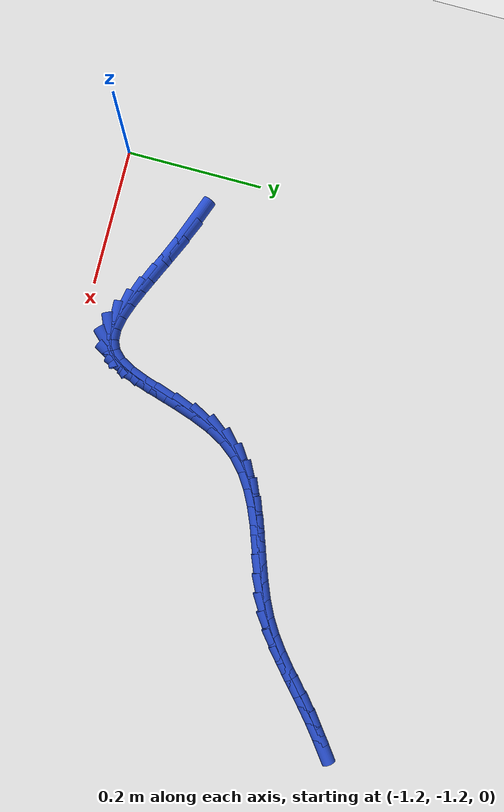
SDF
<sdf version="1.6">
 <world name="default">
  <model name="ground_plane">
   <static>1</static>
   <link name="link">
    <collision name="collision">
     <geometry><plane><normal>0 0 1</normal><size>100 100</size></plane></geometry>
     <surface><friction><ode><mu>100</mu><mu2>50</mu2></ode></friction></surface>
    </collision>
    <visual name="visual">
     <cast_shadows>0</cast_shadows>
     <geometry><plane><normal>0 0 1</normal><size>100 100</size></plane></geometry>
     <material>
      <script><uri>file://media/materials/scripts/gazebo.material</uri><name>Gazebo/WhiteGlow</name></script>
     </material>
    </visual>
   </link>
  </model>
  <model name="line">
   <link name="link_212">
    <pose>-1.1208861672989143 -1.081029491116497 0.01 0 1.57 -0.3668661049684762</pose>
    <collision name="collision">
     <geometry><cylinder><radius>0.01</radius><length>0.08</length></cylinder></geometry>
    </collision>
    <visual name="visual">
     <material>
      <script><name>Gazebo/Blue</name><uri>file://media/materials/scripts/gazebo.material</uri></script>
     </material>
     <geometry><cylinder><radius>0.01</radius><length>0.08</length></cylinder></geometry>
    </visual>
   </link>
   <link name="link_213">
    <pose>-1.0900648138218478 -1.0928729714566867 0.01 0 1.57 -0.4141172811851447</pose>
    <collision name="collision">
     <geometry><cylinder><radius>0.01</radius><length>0.08</length></cylinder></geometry>
    </collision>
    <visual name="visual">
     <material>
      <script><name>Gazebo/Blue</name><uri>file://media/materials/scripts/gazebo.material</uri></script>
     </material>
     <geometry><cylinder><radius>0.01</radius><length>0.08</length></cylinder></geometry>
    </visual>
   </link>
   <link name="link_214">
    <pose>-1.06080799821197 -1.1057323676902944 0.01 0 1.57 -0.4387109731926885</pose>
    <collision name="collision">
     <geometry><cylinder><radius>0.01</radius><length>0.08</length></cylinder></geometry>
    </collision>
    <visual name="visual">
     <material>
      <script><name>Gazebo/Blue</name><uri>file://media/materials/scripts/gazebo.material</uri></script>
     </material>
     <geometry><cylinder><radius>0.01</radius><length>0.08</length></cylinder></geometry>
    </visual>
   </link>
   <link name="link_215">
    <pose>-1.0332342277439517 -1.118670167249811 0.01 0 1.57 -0.4382717610105717</pose>
    <collision name="collision">
     <geometry><cylinder><radius>0.01</radius><length>0.08</length></cylinder></geometry>
    </collision>
    <visual name="visual">
     <material>
      <script><name>Gazebo/Blue</name><uri>file://media/materials/scripts/gazebo.material</uri></script>
     </material>
     <geometry><cylinder><radius>0.01</radius><length>0.08</length></cylinder></geometry>
    </visual>
   </link>
   <link name="link_216">
    <pose>-1.007462009692463 -1.1307488575677267 0.01 0 1.57 -0.4070049306247056</pose>
    <collision name="collision">
     <geometry><cylinder><radius>0.01</radius><length>0.08</length></cylinder></geometry>
    </collision>
    <visual name="visual">
     <material>
      <script><name>Gazebo/Blue</name><uri>file://media/materials/scripts/gazebo.material</uri></script>
     </material>
     <geometry><cylinder><radius>0.01</radius><length>0.08</length></cylinder></geometry>
    </visual>
   </link>
   <link name="link_217">
    <pose>-0.9836098513321746 -1.1410309260765328 0.01 0 1.57 -0.33312457676220664</pose>
    <collision name="collision">
     <geometry><cylinder><radius>0.01</radius><length>0.08</length></cylinder></geometry>
    </collision>
    <visual name="visual">
     <material>
      <script><name>Gazebo/Blue</name><uri>file://media/materials/scripts/gazebo.material</uri></script>
     </material>
     <geometry><cylinder><radius>0.01</radius><length>0.08</length></cylinder></geometry>
    </visual>
   </link>
   <link name="link_218">
    <pose>-0.9617962599377582 -1.1485788602087186 0.01 0 1.57 -0.19470288577468708</pose>
    <collision name="collision">
     <geometry><cylinder><radius>0.01</radius><length>0.08</length></cylinder></geometry>
    </collision>
    <visual name="visual">
     <material>
      <script><name>Gazebo/Blue</name><uri>file://media/materials/scripts/gazebo.material</uri></script>
     </material>
     <geometry><cylinder><radius>0.01</radius><length>0.08</length></cylinder></geometry>
    </visual>
   </link>
   <link name="link_219">
    <pose>-0.942139742783884 -1.1524551473967757 0.01 0 1.57 0.04214033547796415</pose>
    <collision name="collision">
     <geometry><cylinder><radius>0.01</radius><length>0.08</length></cylinder></geometry>
    </collision>
    <visual name="visual">
     <material>
      <script><name>Gazebo/Blue</name><uri>file://media/materials/scripts/gazebo.material</uri></script>
     </material>
     <geometry><cylinder><radius>0.01</radius><length>0.08</length></cylinder></geometry>
    </visual>
   </link>
   <link name="link_220">
    <pose>-0.924758807145222 -1.151722275073194 0.01 0 1.57 0.39678079146949946</pose>
    <collision name="collision">
     <geometry><cylinder><radius>0.01</radius><length>0.08</length></cylinder></geometry>
    </collision>
    <visual name="visual">
     <material>
      <script><name>Gazebo/Blue</name><uri>file://media/materials/scripts/gazebo.material</uri></script>
     </material>
     <geometry><cylinder><radius>0.01</radius><length>0.08</length></cylinder></geometry>
    </visual>
   </link>
   <link name="link_221">
    <pose>-0.9097719602964435 -1.1454427306704646 0.01 0 1.57 0.7921762380088513</pose>
    <collision name="collision">
     <geometry><cylinder><radius>0.01</radius><length>0.08</length></cylinder></geometry>
    </collision>
    <visual name="visual">
     <material>
      <script><name>Gazebo/Blue</name><uri>file://media/materials/scripts/gazebo.material</uri></script>
     </material>
     <geometry><cylinder><radius>0.01</radius><length>0.08</length></cylinder></geometry>
    </visual>
   </link>
   <link name="link_222">
    <pose>-0.8972657617313341 -1.1327658366105413 0.01 0 1.57 1.0616512906672662</pose>
    <collision name="collision">
     <geometry><cylinder><radius>0.01</radius><length>0.08</length></cylinder></geometry>
    </collision>
    <visual name="visual">
     <material>
      <script><name>Gazebo/Blue</name><uri>file://media/materials/scripts/gazebo.material</uri></script>
     </material>
     <geometry><cylinder><radius>0.01</radius><length>0.08</length></cylinder></geometry>
    </visual>
   </link>
   <link name="link_223">
    <pose>-0.8868564926729448 -1.1141191452128152 0.01 0 1.57 1.1989379848951742</pose>
    <collision name="collision">
     <geometry><cylinder><radius>0.01</radius><length>0.08</length></cylinder></geometry>
    </collision>
    <visual name="visual">
     <material>
      <script><name>Gazebo/Blue</name><uri>file://media/materials/scripts/gazebo.material</uri></script>
     </material>
     <geometry><cylinder><radius>0.01</radius><length>0.08</length></cylinder></geometry>
    </visual>
   </link>
   <link name="link_224">
    <pose>-0.8778023390294762 -1.0909035221859238 0.01 0 1.57 1.260581516897273</pose>
    <collision name="collision">
     <geometry><cylinder><radius>0.01</radius><length>0.08</length></cylinder></geometry>
    </collision>
    <visual name="visual">
     <material>
      <script><name>Gazebo/Blue</name><uri>file://media/materials/scripts/gazebo.material</uri></script>
     </material>
     <geometry><cylinder><radius>0.01</radius><length>0.08</length></cylinder></geometry>
    </visual>
   </link>
   <link name="link_225">
    <pose>-0.8693524991860286 -1.0645442615853866 0.01 0 1.57 1.2736949032423823</pose>
    <collision name="collision">
     <geometry><cylinder><radius>0.01</radius><length>0.08</length></cylinder></geometry>
    </collision>
    <visual name="visual">
     <material>
      <script><name>Gazebo/Blue</name><uri>file://media/materials/scripts/gazebo.material</uri></script>
     </material>
     <geometry><cylinder><radius>0.01</radius><length>0.08</length></cylinder></geometry>
    </visual>
   </link>
   <link name="link_226">
    <pose>-0.8607561715277018 -1.0364666574667243 0.01 0 1.57 1.247880961234506</pose>
    <collision name="collision">
     <geometry><cylinder><radius>0.01</radius><length>0.08</length></cylinder></geometry>
    </collision>
    <visual name="visual">
     <material>
      <script><name>Gazebo/Blue</name><uri>file://media/materials/scripts/gazebo.material</uri></script>
     </material>
     <geometry><cylinder><radius>0.01</radius><length>0.08</length></cylinder></geometry>
    </visual>
   </link>
   <link name="link_227">
    <pose>-0.8512625544395966 -1.0080960038854585 0.01 0 1.57 1.1825177818254713</pose>
    <collision name="collision">
     <geometry><cylinder><radius>0.01</radius><length>0.08</length></cylinder></geometry>
    </collision>
    <visual name="visual">
     <material>
      <script><name>Gazebo/Blue</name><uri>file://media/materials/scripts/gazebo.material</uri></script>
     </material>
     <geometry><cylinder><radius>0.01</radius><length>0.08</length></cylinder></geometry>
    </visual>
   </link>
   <link name="link_228">
    <pose>-0.8401208463068134 -0.9808575948971097 0.01 0 1.57 1.0690075752272354</pose>
    <collision name="collision">
     <geometry><cylinder><radius>0.01</radius><length>0.08</length></cylinder></geometry>
    </collision>
    <visual name="visual">
     <material>
      <script><name>Gazebo/Blue</name><uri>file://media/materials/scripts/gazebo.material</uri></script>
     </material>
     <geometry><cylinder><radius>0.01</radius><length>0.08</length></cylinder></geometry>
    </visual>
   </link>
   <link name="link_229">
    <pose>-0.8265802455144524 -0.956176724557198 0.01 0 1.57 0.9017826069878376</pose>
    <collision name="collision">
     <geometry><cylinder><radius>0.01</radius><length>0.08</length></cylinder></geometry>
    </collision>
    <visual name="visual">
     <material>
      <script><name>Gazebo/Blue</name><uri>file://media/materials/scripts/gazebo.material</uri></script>
     </material>
     <geometry><cylinder><radius>0.01</radius><length>0.08</length></cylinder></geometry>
    </visual>
   </link>
   <link name="link_230">
    <pose>-0.8100306466969263 -0.9352450899686405 0.01 0 1.57 0.7304967157284487</pose>
    <collision name="collision">
     <geometry><cylinder><radius>0.01</radius><length>0.08</length></cylinder></geometry>
    </collision>
    <visual name="visual">
     <material>
      <script><name>Gazebo/Blue</name><uri>file://media/materials/scripts/gazebo.material</uri></script>
     </material>
     <geometry><cylinder><radius>0.01</radius><length>0.08</length></cylinder></geometry>
    </visual>
   </link>
   <link name="link_231">
    <pose>-0.7906743808808089 -0.9179055060408285 0.01 0 1.57 0.5861280367078591</pose>
    <collision name="collision">
     <geometry><cylinder><radius>0.01</radius><length>0.08</length></cylinder></geometry>
    </collision>
    <visual name="visual">
     <material>
      <script><name>Gazebo/Blue</name><uri>file://media/materials/scripts/gazebo.material</uri></script>
     </material>
     <geometry><cylinder><radius>0.01</radius><length>0.08</length></cylinder></geometry>
    </visual>
   </link>
   <link name="link_232">
    <pose>-0.7690047515074829 -0.9035176883132442 0.01 0 1.57 0.4749006647236652</pose>
    <collision name="collision">
     <geometry><cylinder><radius>0.01</radius><length>0.08</length></cylinder></geometry>
    </collision>
    <visual name="visual">
     <material>
      <script><name>Gazebo/Blue</name><uri>file://media/materials/scripts/gazebo.material</uri></script>
     </material>
     <geometry><cylinder><radius>0.01</radius><length>0.08</length></cylinder></geometry>
    </visual>
   </link>
   <link name="link_233">
    <pose>-0.7455154326626457 -0.89144073694733 0.01 0 1.57 0.3970984434244008</pose>
    <collision name="collision">
     <geometry><cylinder><radius>0.01</radius><length>0.08</length></cylinder></geometry>
    </collision>
    <visual name="visual">
     <material>
      <script><name>Gazebo/Blue</name><uri>file://media/materials/scripts/gazebo.material</uri></script>
     </material>
     <geometry><cylinder><radius>0.01</radius><length>0.08</length></cylinder></geometry>
    </visual>
   </link>
   <link name="link_234">
    <pose>-0.7207000984319929 -0.881033752104528 0.01 0 1.57 0.3505430093700048</pose>
    <collision name="collision">
     <geometry><cylinder><radius>0.01</radius><length>0.08</length></cylinder></geometry>
    </collision>
    <visual name="visual">
     <material>
      <script><name>Gazebo/Blue</name><uri>file://media/materials/scripts/gazebo.material</uri></script>
     </material>
     <geometry><cylinder><radius>0.01</radius><length>0.08</length></cylinder></geometry>
    </visual>
   </link>
   <link name="link_235">
    <pose>-0.6950524229012228 -0.8716558339462818 0.01 0 1.57 0.3330545580949228</pose>
    <collision name="collision">
     <geometry><cylinder><radius>0.01</radius><length>0.08</length></cylinder></geometry>
    </collision>
    <visual name="visual">
     <material>
      <script><name>Gazebo/Blue</name><uri>file://media/materials/scripts/gazebo.material</uri></script>
     </material>
     <geometry><cylinder><radius>0.01</radius><length>0.08</length></cylinder></geometry>
    </visual>
   </link>
   <link name="link_236">
    <pose>-0.6690660801560318 -0.8626660826340334 0.01 0 1.57 0.3436077340081566</pose>
    <collision name="collision">
     <geometry><cylinder><radius>0.01</radius><length>0.08</length></cylinder></geometry>
    </collision>
    <visual name="visual">
     <material>
      <script><name>Gazebo/Blue</name><uri>file://media/materials/scripts/gazebo.material</uri></script>
     </material>
     <geometry><cylinder><radius>0.01</radius><length>0.08</length></cylinder></geometry>
    </visual>
   </link>
   <link name="link_237">
    <pose>-0.6432347442821158 -0.8534235983292252 0.01 0 1.57 0.3826630570691851</pose>
    <collision name="collision">
     <geometry><cylinder><radius>0.01</radius><length>0.08</length></cylinder></geometry>
    </collision>
    <visual name="visual">
     <material>
      <script><name>Gazebo/Blue</name><uri>file://media/materials/scripts/gazebo.material</uri></script>
     </material>
     <geometry><cylinder><radius>0.01</radius><length>0.08</length></cylinder></geometry>
    </visual>
   </link>
   <link name="link_238">
    <pose>-0.618052089365172 -0.8432874811932998 0.01 0 1.57 0.4519496381017872</pose>
    <collision name="collision">
     <geometry><cylinder><radius>0.01</radius><length>0.08</length></cylinder></geometry>
    </collision>
    <visual name="visual">
     <material>
      <script><name>Gazebo/Blue</name><uri>file://media/materials/scripts/gazebo.material</uri></script>
     </material>
     <geometry><cylinder><radius>0.01</radius><length>0.08</length></cylinder></geometry>
    </visual>
   </link>
   <link name="link_239">
    <pose>-0.5940117894908971 -0.8316168313876999 0.01 0 1.57 0.5453134675552125</pose>
    <collision name="collision">
     <geometry><cylinder><radius>0.01</radius><length>0.08</length></cylinder></geometry>
    </collision>
    <visual name="visual">
     <material>
      <script><name>Gazebo/Blue</name><uri>file://media/materials/scripts/gazebo.material</uri></script>
     </material>
     <geometry><cylinder><radius>0.01</radius><length>0.08</length></cylinder></geometry>
    </visual>
   </link>
   <link name="link_240">
    <pose>-0.571470900088309 -0.8179418271555421 0.01 0 1.57 0.6257925758577362</pose>
    <collision name="collision">
     <geometry><cylinder><radius>0.01</radius><length>0.08</length></cylinder></geometry>
    </collision>
    <visual name="visual">
     <material>
      <script><name>Gazebo/Blue</name><uri>file://media/materials/scripts/gazebo.material</uri></script>
     </material>
     <geometry><cylinder><radius>0.01</radius><length>0.08</length></cylinder></geometry>
    </visual>
   </link>
   <link name="link_241">
    <pose>-0.5501784782308903 -0.8025540009711689 0.01 0 1.57 0.681445261997988</pose>
    <collision name="collision">
     <geometry><cylinder><radius>0.01</radius><length>0.08</length></cylinder></geometry>
    </collision>
    <visual name="visual">
     <material>
      <script><name>Gazebo/Blue</name><uri>file://media/materials/scripts/gazebo.material</uri></script>
     </material>
     <geometry><cylinder><radius>0.01</radius><length>0.08</length></cylinder></geometry>
    </visual>
   </link>
   <link name="link_242">
    <pose>-0.5297145073749524 -0.7859566044898197 0.01 0 1.57 0.7118721687227305</pose>
    <collision name="collision">
     <geometry><cylinder><radius>0.01</radius><length>0.08</length></cylinder></geometry>
    </collision>
    <visual name="visual">
     <material>
      <script><name>Gazebo/Blue</name><uri>file://media/materials/scripts/gazebo.material</uri></script>
     </material>
     <geometry><cylinder><radius>0.01</radius><length>0.08</length></cylinder></geometry>
    </visual>
   </link>
   <link name="link_243">
    <pose>-0.509658964143424 -0.7686528979237045 0.01 0 1.57 0.7173607520386557</pose>
    <collision name="collision">
     <geometry><cylinder><radius>0.01</radius><length>0.08</length></cylinder></geometry>
    </collision>
    <visual name="visual">
     <material>
      <script><name>Gazebo/Blue</name><uri>file://media/materials/scripts/gazebo.material</uri></script>
     </material>
     <geometry><cylinder><radius>0.01</radius><length>0.08</length></cylinder></geometry>
    </visual>
   </link>
   <link name="link_244">
    <pose>-0.4895918251592366 -0.7511461414850356 0.01 0 1.57 0.6984273716108708</pose>
    <collision name="collision">
     <geometry><cylinder><radius>0.01</radius><length>0.08</length></cylinder></geometry>
    </collision>
    <visual name="visual">
     <material>
      <script><name>Gazebo/Blue</name><uri>file://media/materials/scripts/gazebo.material</uri></script>
     </material>
     <geometry><cylinder><radius>0.01</radius><length>0.08</length></cylinder></geometry>
    </visual>
   </link>
   <link name="link_245">
    <pose>-0.46909526175262467 -0.7339371529511967 0.01 0 1.57 0.6657111081769085</pose>
    <collision name="collision">
     <geometry><cylinder><radius>0.01</radius><length>0.08</length></cylinder></geometry>
    </collision>
    <visual name="visual">
     <material>
      <script><name>Gazebo/Blue</name><uri>file://media/materials/scripts/gazebo.material</uri></script>
     </material>
     <geometry><cylinder><radius>0.01</radius><length>0.08</length></cylinder></geometry>
    </visual>
   </link>
   <link name="link_246">
    <pose>-0.44793627034060096 -0.7173210628868605 0.01 0 1.57 0.6372078165920887</pose>
    <collision name="collision">
     <geometry><cylinder><radius>0.01</radius><length>0.08</length></cylinder></geometry>
    </collision>
    <visual name="visual">
     <material>
      <script><name>Gazebo/Blue</name><uri>file://media/materials/scripts/gazebo.material</uri></script>
     </material>
     <geometry><cylinder><radius>0.01</radius><length>0.08</length></cylinder></geometry>
    </visual>
   </link>
  </model>
 </world>
</sdf>
